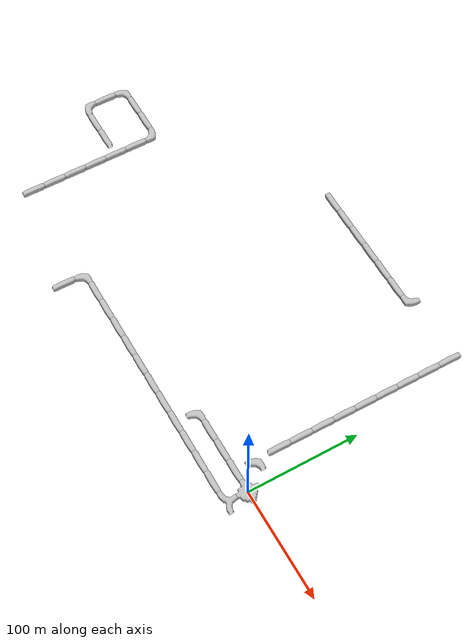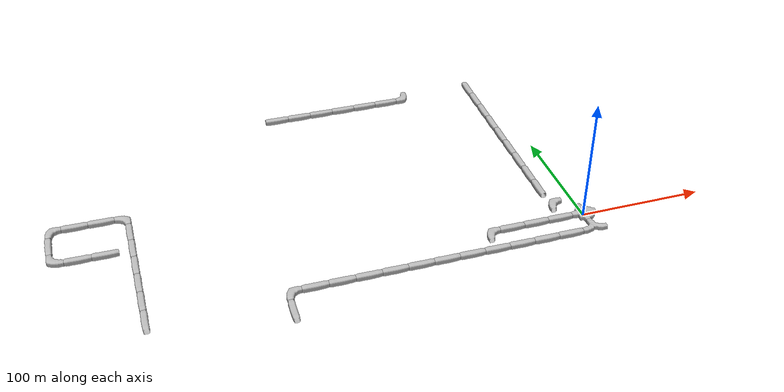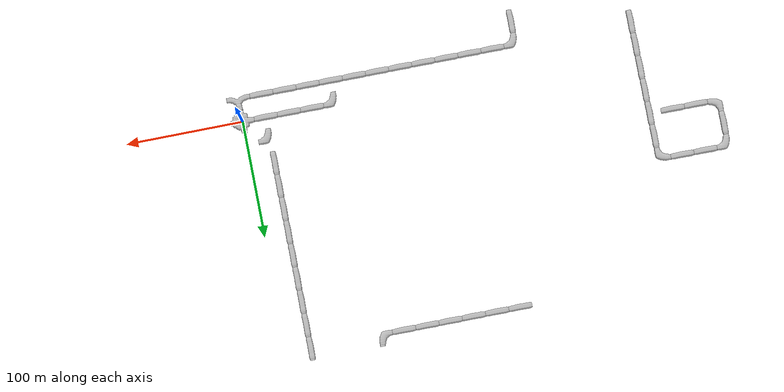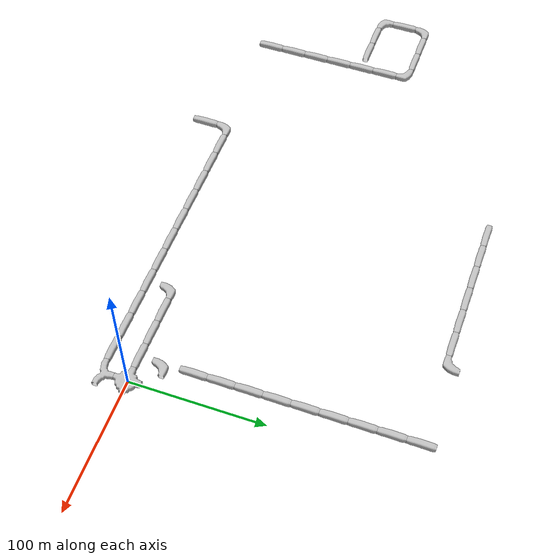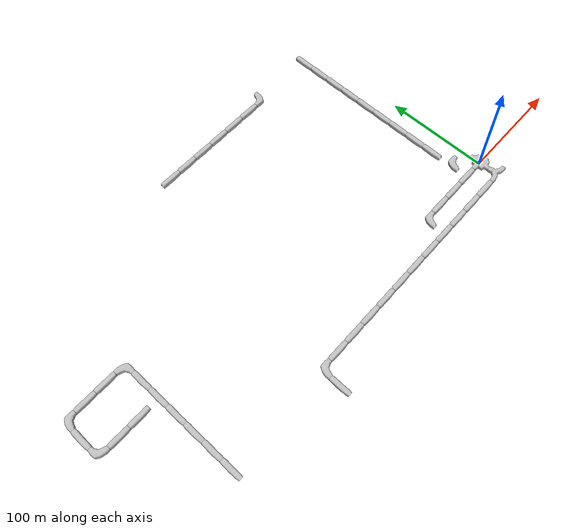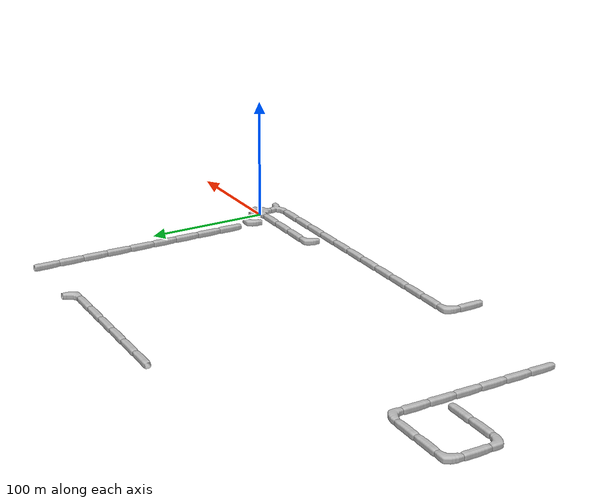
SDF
<sdf version="1.6">
 <world name="cave_16000_16">
  <include>
   <static>true</static>
   <name>cave_0_0</name>
   <pose>0 0 0 0 0 -1.5707963267948966</pose>
   <uri>model://cave_4way_20m</uri>
  </include>
  <include>
   <static>true</static>
   <name>cave_0_-1</name>
   <pose>0 -20 0 0 0 0.0</pose>
   <uri>model://cave_3way_20m</uri>
  </include>
  <include>
   <static>true</static>
   <name>cave_-1_-1</name>
   <pose>-20 -20 0 0 0 1.5707963267948966</pose>
   <uri>model://cave_straight_20m</uri>
  </include>
  <include>
   <static>true</static>
   <name>cave_-2_-1</name>
   <pose>-40 -20 0 0 0 1.5707963267948966</pose>
   <uri>model://cave_straight_20m</uri>
  </include>
  <include>
   <static>true</static>
   <name>cave_-3_-1</name>
   <pose>-60 -20 0 0 0 1.5707963267948966</pose>
   <uri>model://cave_straight_20m</uri>
  </include>
  <include>
   <static>true</static>
   <name>cave_-4_-1</name>
   <pose>-80 -20 0 0 0 1.5707963267948966</pose>
   <uri>model://cave_straight_20m</uri>
  </include>
  <include>
   <static>true</static>
   <name>cave_-5_-1</name>
   <pose>-100 -20 0 0 0 1.5707963267948966</pose>
   <uri>model://cave_straight_20m</uri>
  </include>
  <include>
   <static>true</static>
   <name>cave_-6_-1</name>
   <pose>-120 -20 0 0 0 1.5707963267948966</pose>
   <uri>model://cave_straight_20m</uri>
  </include>
  <include>
   <static>true</static>
   <name>cave_-7_-1</name>
   <pose>-140 -20 0 0 0 1.5707963267948966</pose>
   <uri>model://cave_straight_20m</uri>
  </include>
  <include>
   <static>true</static>
   <name>cave_-8_-1</name>
   <pose>-160 -20 0 0 0 1.5707963267948966</pose>
   <uri>model://cave_straight_20m</uri>
  </include>
  <include>
   <static>true</static>
   <name>cave_-9_-1</name>
   <pose>-180 -20 0 0 0 1.5707963267948966</pose>
   <uri>model://cave_straight_20m</uri>
  </include>
  <include>
   <static>true</static>
   <name>cave_-10_-1</name>
   <pose>-200 -20 0 0 0 1.5707963267948966</pose>
   <uri>model://cave_straight_20m</uri>
  </include>
  <include>
   <static>true</static>
   <name>cave_-11_-1</name>
   <pose>-220 -20 0 0 0 1.5707963267948966</pose>
   <uri>model://cave_straight_20m</uri>
  </include>
  <include>
   <static>true</static>
   <name>cave_-12_-1</name>
   <pose>-240 -20 0 0 0 -1.5707963267948966</pose>
   <uri>model://cave_L_20m</uri>
  </include>
  <include>
   <static>true</static>
   <name>cave_-12_-2</name>
   <pose>-240 -40 0 0 0 0.0</pose>
   <uri>model://cave_straight_20m</uri>
  </include>
  <include>
   <static>true</static>
   <name>cave_-17_-1</name>
   <pose>-340 -20 0 0 0 0.0</pose>
   <uri>model://cave_straight_20m</uri>
  </include>
  <include>
   <static>true</static>
   <name>cave_-17_0</name>
   <pose>-340 0 0 0 0 0.0</pose>
   <uri>model://cave_straight_20m</uri>
  </include>
  <include>
   <static>true</static>
   <name>cave_-17_1</name>
   <pose>-340 20 0 0 0 0.0</pose>
   <uri>model://cave_straight_20m</uri>
  </include>
  <include>
   <static>true</static>
   <name>cave_-17_2</name>
   <pose>-340 40 0 0 0 0.0</pose>
   <uri>model://cave_straight_20m</uri>
  </include>
  <include>
   <static>true</static>
   <name>cave_-17_3</name>
   <pose>-340 60 0 0 0 0.0</pose>
   <uri>model://cave_straight_20m</uri>
  </include>
  <include>
   <static>true</static>
   <name>cave_-17_4</name>
   <pose>-340 80 0 0 0 0.0</pose>
   <uri>model://cave_straight_20m</uri>
  </include>
  <include>
   <static>true</static>
   <name>cave_-17_5</name>
   <pose>-340 100 0 0 0 3.141592653589793</pose>
   <uri>model://cave_L_20m</uri>
  </include>
  <include>
   <static>true</static>
   <name>cave_-18_5</name>
   <pose>-360 100 0 0 0 1.5707963267948966</pose>
   <uri>model://cave_straight_20m</uri>
  </include>
  <include>
   <static>true</static>
   <name>cave_-19_5</name>
   <pose>-380 100 0 0 0 1.5707963267948966</pose>
   <uri>model://cave_straight_20m</uri>
  </include>
  <include>
   <static>true</static>
   <name>cave_-20_5</name>
   <pose>-400 100 0 0 0 -1.5707963267948966</pose>
   <uri>model://cave_L_20m</uri>
  </include>
  <include>
   <static>true</static>
   <name>cave_-20_4</name>
   <pose>-400 80 0 0 0 0.0</pose>
   <uri>model://cave_straight_20m</uri>
  </include>
  <include>
   <static>true</static>
   <name>cave_-20_3</name>
   <pose>-400 60 0 0 0 0.0</pose>
   <uri>model://cave_L_20m</uri>
  </include>
  <include>
   <static>true</static>
   <name>cave_-19_3</name>
   <pose>-380 60 0 0 0 1.5707963267948966</pose>
   <uri>model://cave_straight_20m</uri>
  </include>
  <include>
   <static>true</static>
   <name>cave_-18_3</name>
   <pose>-360 60 0 0 0 1.5707963267948966</pose>
   <uri>model://cave_straight_20m</uri>
  </include>
  <include>
   <static>true</static>
   <name>cave_-1_0</name>
   <pose>-20 0 0 0 0 1.5707963267948966</pose>
   <uri>model://cave_straight_20m</uri>
  </include>
  <include>
   <static>true</static>
   <name>cave_-2_0</name>
   <pose>-40 0 0 0 0 1.5707963267948966</pose>
   <uri>model://cave_straight_20m</uri>
  </include>
  <include>
   <static>true</static>
   <name>cave_-3_0</name>
   <pose>-60 0 0 0 0 1.5707963267948966</pose>
   <uri>model://cave_straight_20m</uri>
  </include>
  <include>
   <static>true</static>
   <name>cave_-4_0</name>
   <pose>-80 0 0 0 0 -1.5707963267948966</pose>
   <uri>model://cave_L_20m</uri>
  </include>
  <include>
   <static>true</static>
   <name>cave_-1_1</name>
   <pose>-20 20 0 0 0 -1.5707963267948966</pose>
   <uri>model://cave_L_20m</uri>
  </include>
  <include>
   <static>true</static>
   <name>cave_-1_10</name>
   <pose>-20 200 0 0 0 0.0</pose>
   <uri>model://cave_straight_20m</uri>
  </include>
  <include>
   <static>true</static>
   <name>cave_-1_9</name>
   <pose>-20 180 0 0 0 0.0</pose>
   <uri>model://cave_straight_20m</uri>
  </include>
  <include>
   <static>true</static>
   <name>cave_-1_8</name>
   <pose>-20 160 0 0 0 0.0</pose>
   <uri>model://cave_straight_20m</uri>
  </include>
  <include>
   <static>true</static>
   <name>cave_-1_7</name>
   <pose>-20 140 0 0 0 0.0</pose>
   <uri>model://cave_straight_20m</uri>
  </include>
  <include>
   <static>true</static>
   <name>cave_-1_6</name>
   <pose>-20 120 0 0 0 0.0</pose>
   <uri>model://cave_straight_20m</uri>
  </include>
  <include>
   <static>true</static>
   <name>cave_-1_5</name>
   <pose>-20 100 0 0 0 0.0</pose>
   <uri>model://cave_straight_20m</uri>
  </include>
  <include>
   <static>true</static>
   <name>cave_-1_4</name>
   <pose>-20 80 0 0 0 0.0</pose>
   <uri>model://cave_straight_20m</uri>
  </include>
  <include>
   <static>true</static>
   <name>cave_-1_3</name>
   <pose>-20 60 0 0 0 0.0</pose>
   <uri>model://cave_straight_20m</uri>
  </include>
  <include>
   <static>true</static>
   <name>cave_-1_2</name>
   <pose>-20 40 0 0 0 0.0</pose>
   <uri>model://cave_straight_20m</uri>
  </include>
  <include>
   <static>true</static>
   <name>cave_-4_10</name>
   <pose>-80 200 0 0 0 1.5707963267948966</pose>
   <uri>model://cave_L_20m</uri>
  </include>
  <include>
   <static>true</static>
   <name>cave_-5_10</name>
   <pose>-100 200 0 0 0 1.5707963267948966</pose>
   <uri>model://cave_straight_20m</uri>
  </include>
  <include>
   <static>true</static>
   <name>cave_-6_10</name>
   <pose>-120 200 0 0 0 1.5707963267948966</pose>
   <uri>model://cave_straight_20m</uri>
  </include>
  <include>
   <static>true</static>
   <name>cave_-7_10</name>
   <pose>-140 200 0 0 0 1.5707963267948966</pose>
   <uri>model://cave_straight_20m</uri>
  </include>
  <include>
   <static>true</static>
   <name>cave_-8_10</name>
   <pose>-160 200 0 0 0 1.5707963267948966</pose>
   <uri>model://cave_straight_20m</uri>
  </include>
  <include>
   <static>true</static>
   <name>cave_-9_10</name>
   <pose>-180 200 0 0 0 1.5707963267948966</pose>
   <uri>model://cave_straight_20m</uri>
  </include>
  <include>
   <static>true</static>
   <name>cave_-10_10</name>
   <pose>-200 200 0 0 0 1.5707963267948966</pose>
   <uri>model://cave_straight_20m</uri>
  </include>
 </world>
</sdf>
